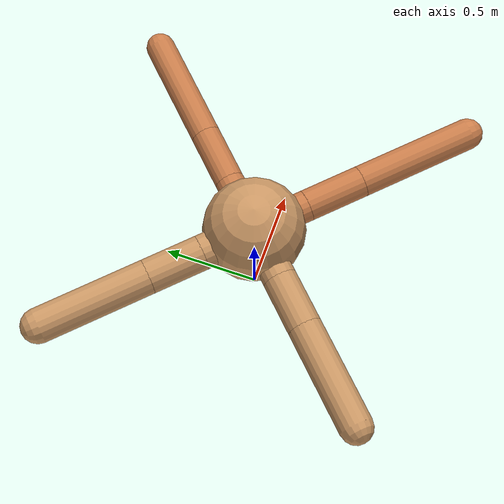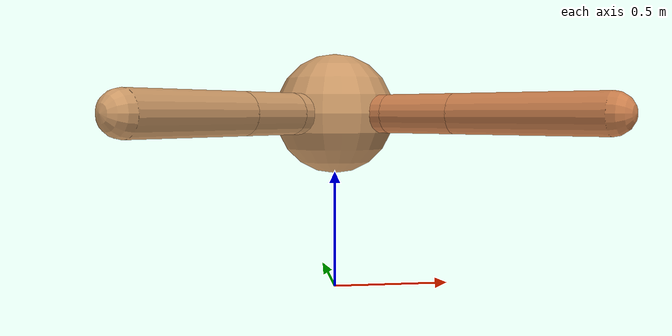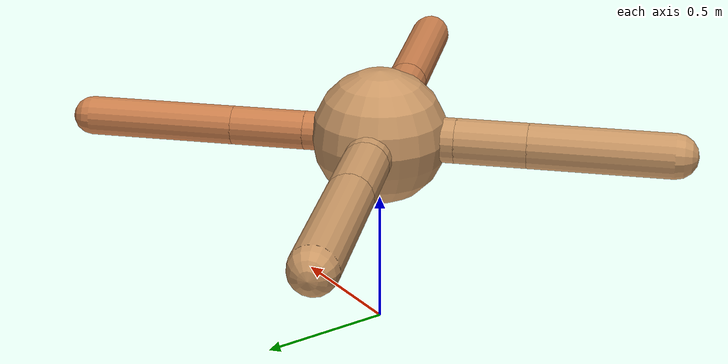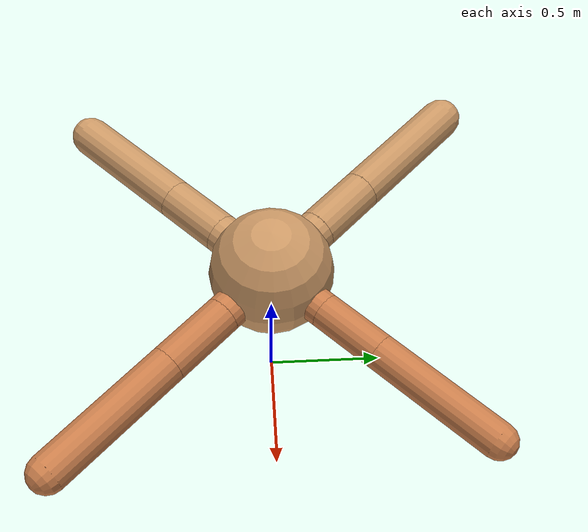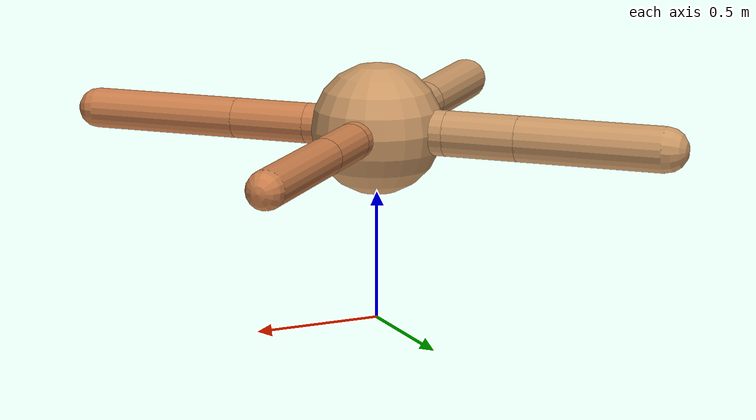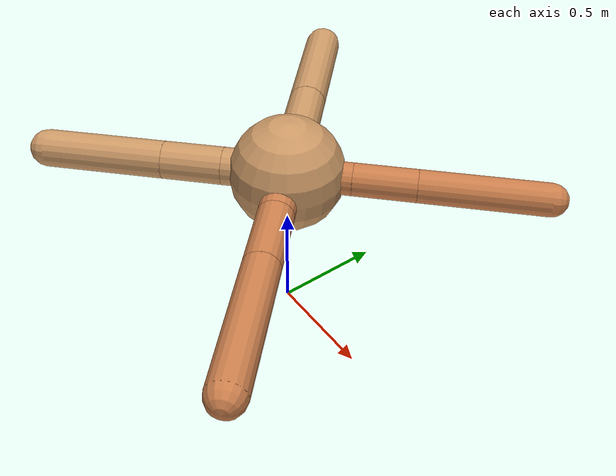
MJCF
<?xml version="1.0" ?>
<mujoco model="ant">

	<compiler angle="degree" coordinate="local" inertiafromgeom="true"/>

	<option integrator="RK4" timestep="0.01"/>

	<custom>

		<numeric data="0.0 0.0 0.55 1.0 0.0 0.0 0.0 0.0 1.0 0.0 -1.0 0.0 -1.0 0.0 1.0" name="init_qpos"/>

	</custom>

	<default>

		<joint armature="1" damping="1" limited="true"/>

		<geom conaffinity="0" condim="3" density="5.0" friction="1.5 0.1 0.1" margin="0.01" rgba="0.8 0.6 0.4 1"/>

	</default>

	<worldbody>

		<body name="torso" pos="0 0 0.75">

			<geom name="torso_geom" pos="0 0 0" size="0.25430013315668976" type="sphere"/>

			<!--joint armature="0" damping="0" limited="false" margin="0.01" name="root" pos="0 0 0" type="free"/-->

			<body name="front_left_leg" pos="0 0 0">

				<geom fromto="0 0 0 0.2 0.2 0" name="aux_1_geom" size="0.07248728529685887" type="capsule" rgba=".8 .5 .3 1"/>

				<body name="aux_1" pos="0.2 0.2 0">

					<joint axis="0 0 1" name="hip_1" pos="0.0 0.0 0.0" range="-40 40" type="hinge"/>

					<geom fromto="0 0 0 0.1949529412234079 0.1949529412234079 0" name="left_leg_geom" size="0.07248728529685887" type="capsule" rgba=".8 .5 .3 1"/>

					<body pos="0.1949529412234079 0.1949529412234079 0" name="front_left_foot">

						<joint axis="-1 1 0" name="ankle_1" pos="0.0 0.0 0.0" range="30 100" type="hinge"/>

						<geom fromto="0 0 0 0.3899058824468158 0.3899058824468158 0" name="left_ankle_geom" size="0.07248728529685887" type="capsule" rgba=".8 .5 .3 1"/>

					</body>

				</body>

			</body>

			<body name="front_right_leg" pos="0 0 0">

				<geom fromto="0 0 0 -0.2 0.2 0" name="aux_2_geom" size="0.08766963209627504" type="capsule"/>

				<body name="aux_2" pos="-0.2 0.2 0">

					<joint axis="0 0 1" name="hip_2" pos="0.0 0.0 0.0" range="-40 40" type="hinge"/>

					<geom fromto="0 0 0 -0.20003326545854763 0.20003326545854763 0" name="right_leg_geom" size="0.08766963209627504" type="capsule"/>

					<body pos="-0.20003326545854763 0.20003326545854763 0" name="front_right_foot">

						<joint axis="1 1 0" name="ankle_2" pos="0.0 0.0 0.0" range="-100 -30" type="hinge"/>

						<geom fromto="0 0 0 -0.40006653091709526 0.40006653091709526 0" name="right_ankle_geom" size="0.08766963209627504" type="capsule"/>

					</body>

				</body>

			</body>

			<body name="left_back_leg" pos="0 0 0">

				<geom fromto="0 0 0 -0.2 -0.2 0" name="aux_3_geom" size="0.08405374456573964" type="capsule"/>

				<body name="aux_3" pos="-0.2 -0.2 0">

					<joint axis="0 0 1" name="hip_3" pos="0.0 0.0 0.0" range="-40 40" type="hinge"/>

					<geom fromto="0 0 0 -0.18890200793403128 -0.18890200793403128 0" name="back_leg_geom" size="0.08405374456573964" type="capsule"/>

					<body pos="-0.18890200793403128 -0.18890200793403128 0" name="left_back_foot">

						<joint axis="-1 1 0" name="ankle_3" pos="0.0 0.0 0.0" range="-100 -30" type="hinge"/>

						<geom fromto="0 0 0 -0.37780401586806256 -0.37780401586806256 0" name="third_ankle_geom" size="0.08405374456573964" type="capsule"/>

					</body>

				</body>

			</body>

			<body name="right_back_leg" pos="0 0 0">

				<geom fromto="0 0 0 0.2 -0.2 0" name="aux_4_geom" size="0.07865532021190355" type="capsule" rgba=".8 .5 .3 1"/>

				<body name="aux_4" pos="0.2 -0.2 0">

					<joint axis="0 0 1" name="hip_4" pos="0.0 0.0 0.0" range="-40 40" type="hinge"/>

					<geom fromto="0 0 0 0.21085804284738555 -0.21085804284738555 0" name="rightback_leg_geom" size="0.07865532021190355" type="capsule" rgba=".8 .5 .3 1"/>

					<body pos="0.21085804284738555 -0.21085804284738555 0" name="right_back_foot">

						<joint axis="1 1 0" name="ankle_4" pos="0.0 0.0 0.0" range="30 100" type="hinge"/>

						<geom fromto="0 0 0 0.4217160856947711 -0.4217160856947711 0" name="fourth_ankle_geom" size="0.07865532021190355" type="capsule" rgba=".8 .5 .3 1"/>

					</body>

				</body>

			</body>

		</body>

	</worldbody>

	<actuator>

		<motor ctrllimited="true" ctrlrange="-1.0 1.0" joint="hip_4" gear="150"/>

		<motor ctrllimited="true" ctrlrange="-1.0 1.0" joint="ankle_4" gear="150"/>

		<motor ctrllimited="true" ctrlrange="-1.0 1.0" joint="hip_1" gear="150"/>

		<motor ctrllimited="true" ctrlrange="-1.0 1.0" joint="ankle_1" gear="150"/>

		<motor ctrllimited="true" ctrlrange="-1.0 1.0" joint="hip_2" gear="150"/>

		<motor ctrllimited="true" ctrlrange="-1.0 1.0" joint="ankle_2" gear="150"/>

		<motor ctrllimited="true" ctrlrange="-1.0 1.0" joint="hip_3" gear="150"/>

		<motor ctrllimited="true" ctrlrange="-1.0 1.0" joint="ankle_3" gear="150"/>

	</actuator>

</mujoco>
